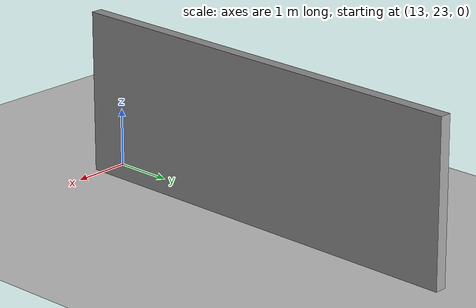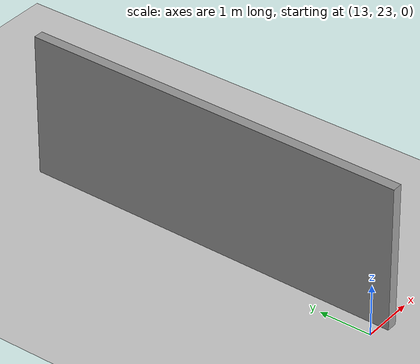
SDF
<sdf version="1.7">
 <world name="default">
  <model name="ground_plane">
   <static>1</static>
   <link name="link">
    <collision name="collision">
     <geometry><plane><normal>0 0 1</normal><size>100 100</size></plane></geometry>
     <surface><friction><ode><mu>100</mu><mu2>50</mu2></ode></friction></surface>
    </collision>
    <visual name="visual">
     <cast_shadows>0</cast_shadows>
     <geometry><plane><normal>0 0 1</normal><size>100 100</size></plane></geometry>
     <material>
      <script><uri>file://media/materials/scripts/gazebo.material</uri><name>Gazebo/Grey</name></script>
     </material>
    </visual>
   </link>
  </model>
  <model name="grey_wall_2_clone_4_clone_2">
   <static>1</static>
   <link name="link">
    <pose>0 0 1.4 0 -0 0</pose>
    <collision name="collision"><geometry><box><size>7.5 0.2 2.8</size></box></geometry></collision>
    <visual name="visual">
     <cast_shadows>0</cast_shadows>
     <geometry><box><size>7.5 0.2 2.8</size></box></geometry>
     <material>
      <script>
       <uri>model://grey_wall/materials/scripts</uri>
       <uri>model://grey_wall/materials/textures</uri>
       <name>vrc/grey_wall</name>
      </script>
     </material>
    </visual>
   </link>
   <pose>13.416 26.5812 0 0 -0 1.5595</pose>
  </model>
 </world>
</sdf>
